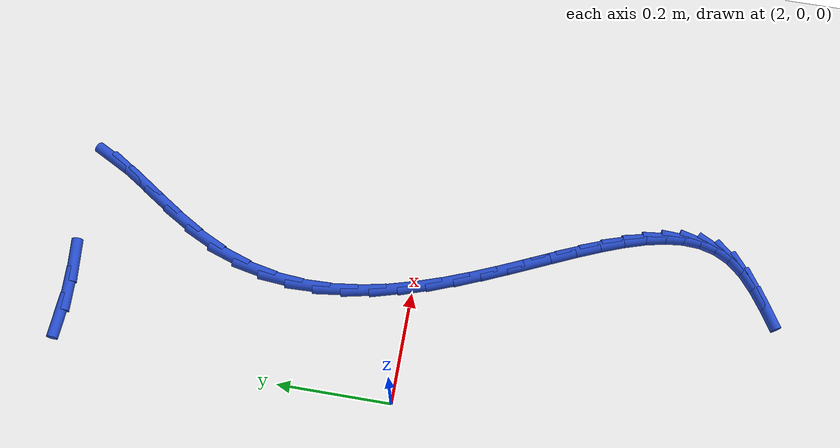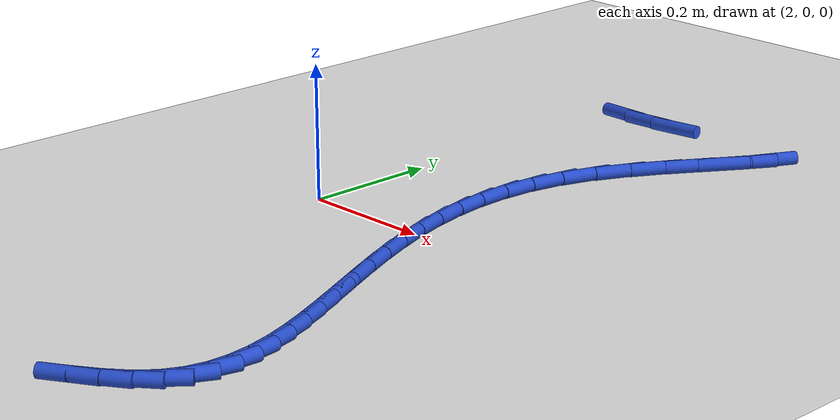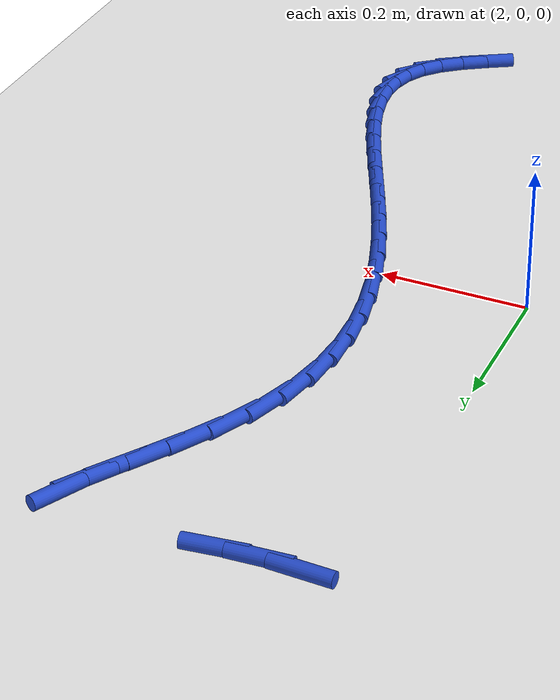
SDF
<sdf version="1.6">
 <world name="default">
  <model name="ground_plane">
   <static>1</static>
   <link name="link">
    <collision name="collision">
     <geometry><plane><normal>0 0 1</normal><size>100 100</size></plane></geometry>
     <surface><friction><ode><mu>100</mu><mu2>50</mu2></ode></friction></surface>
    </collision>
    <visual name="visual">
     <cast_shadows>0</cast_shadows>
     <geometry><plane><normal>0 0 1</normal><size>100 100</size></plane></geometry>
     <material>
      <script><uri>file://media/materials/scripts/gazebo.material</uri><name>Gazebo/WhiteGlow</name></script>
     </material>
    </visual>
   </link>
  </model>
  <model name="line">
   <link name="link_78">
    <pose>2.0508895421811517 0.5960268916804057 0.01 0 1.57 -0.026283981945086205</pose>
    <collision name="collision">
     <geometry><cylinder><radius>0.01</radius><length>0.08</length></cylinder></geometry>
    </collision>
    <visual name="visual">
     <material>
      <script><name>Gazebo/Blue</name><uri>file://media/materials/scripts/gazebo.material</uri></script>
     </material>
     <geometry><cylinder><radius>0.01</radius><length>0.08</length></cylinder></geometry>
    </visual>
   </link>
   <link name="link_79">
    <pose>2.101167924670205 0.5947050711765938 0.01 0 1.57 0.07279974871065867</pose>
    <collision name="collision">
     <geometry><cylinder><radius>0.01</radius><length>0.08</length></cylinder></geometry>
    </collision>
    <visual name="visual">
     <material>
      <script><name>Gazebo/Blue</name><uri>file://media/materials/scripts/gazebo.material</uri></script>
     </material>
     <geometry><cylinder><radius>0.01</radius><length>0.08</length></cylinder></geometry>
    </visual>
   </link>
   <link name="link_80">
    <pose>2.1535966578437957 0.5985286268624497 0.01 0 1.57 0.12800280164289157</pose>
    <collision name="collision">
     <geometry><cylinder><radius>0.01</radius><length>0.08</length></cylinder></geometry>
    </collision>
    <visual name="visual">
     <material>
      <script><name>Gazebo/Blue</name><uri>file://media/materials/scripts/gazebo.material</uri></script>
     </material>
     <geometry><cylinder><radius>0.01</radius><length>0.08</length></cylinder></geometry>
    </visual>
   </link>
   <link name="link_87">
    <pose>2.356748423538991 0.5790809859419566 0.01 0 1.57 1.0931618102962333</pose>
    <collision name="collision">
     <geometry><cylinder><radius>0.01</radius><length>0.08</length></cylinder></geometry>
    </collision>
    <visual name="visual">
     <material>
      <script><name>Gazebo/Blue</name><uri>file://media/materials/scripts/gazebo.material</uri></script>
     </material>
     <geometry><cylinder><radius>0.01</radius><length>0.08</length></cylinder></geometry>
    </visual>
   </link>
   <link name="link_88">
    <pose>2.341363884464642 0.5493586065187686 0.01 0 1.57 1.0045522965104887</pose>
    <collision name="collision">
     <geometry><cylinder><radius>0.01</radius><length>0.08</length></cylinder></geometry>
    </collision>
    <visual name="visual">
     <material>
      <script><name>Gazebo/Blue</name><uri>file://media/materials/scripts/gazebo.material</uri></script>
     </material>
     <geometry><cylinder><radius>0.01</radius><length>0.08</length></cylinder></geometry>
    </visual>
   </link>
   <link name="link_89">
    <pose>2.3184331203912123 0.5132859198176739 0.01 0 1.57 0.9819767871209888</pose>
    <collision name="collision">
     <geometry><cylinder><radius>0.01</radius><length>0.08</length></cylinder></geometry>
    </collision>
    <visual name="visual">
     <material>
      <script><name>Gazebo/Blue</name><uri>file://media/materials/scripts/gazebo.material</uri></script>
     </material>
     <geometry><cylinder><radius>0.01</radius><length>0.08</length></cylinder></geometry>
    </visual>
   </link>
   <link name="link_90">
    <pose>2.2909286613685977 0.47210216742890554 0.01 0 1.57 0.9972425596143414</pose>
    <collision name="collision">
     <geometry><cylinder><radius>0.01</radius><length>0.08</length></cylinder></geometry>
    </collision>
    <visual name="visual">
     <material>
      <script><name>Gazebo/Blue</name><uri>file://media/materials/scripts/gazebo.material</uri></script>
     </material>
     <geometry><cylinder><radius>0.01</radius><length>0.08</length></cylinder></geometry>
    </visual>
   </link>
   <link name="link_91">
    <pose>2.261823037446695 0.42704659094269576 0.01 0 1.57 1.044034522045907</pose>
    <collision name="collision">
     <geometry><cylinder><radius>0.01</radius><length>0.08</length></cylinder></geometry>
    </collision>
    <visual name="visual">
     <material>
      <script><name>Gazebo/Blue</name><uri>file://media/materials/scripts/gazebo.material</uri></script>
     </material>
     <geometry><cylinder><radius>0.01</radius><length>0.08</length></cylinder></geometry>
    </visual>
   </link>
   <link name="link_92">
    <pose>2.2340887786754022 0.3793584319492776 0.01 0 1.57 1.1260745458896164</pose>
    <collision name="collision">
     <geometry><cylinder><radius>0.01</radius><length>0.08</length></cylinder></geometry>
    </collision>
    <visual name="visual">
     <material>
      <script><name>Gazebo/Blue</name><uri>file://media/materials/scripts/gazebo.material</uri></script>
     </material>
     <geometry><cylinder><radius>0.01</radius><length>0.08</length></cylinder></geometry>
    </visual>
   </link>
   <link name="link_93">
    <pose>2.2106984151046136 0.33027693203888364 0.01 0 1.57 1.246651998501154</pose>
    <collision name="collision">
     <geometry><cylinder><radius>0.01</radius><length>0.08</length></cylinder></geometry>
    </collision>
    <visual name="visual">
     <material>
      <script><name>Gazebo/Blue</name><uri>file://media/materials/scripts/gazebo.material</uri></script>
     </material>
     <geometry><cylinder><radius>0.01</radius><length>0.08</length></cylinder></geometry>
    </visual>
   </link>
   <link name="link_94">
    <pose>2.1941019813313622 0.28088207990556296 0.01 0 1.57 1.3749946324505016</pose>
    <collision name="collision">
     <geometry><cylinder><radius>0.01</radius><length>0.08</length></cylinder></geometry>
    </collision>
    <visual name="visual">
     <material>
      <script><name>Gazebo/Blue</name><uri>file://media/materials/scripts/gazebo.material</uri></script>
     </material>
     <geometry><cylinder><radius>0.01</radius><length>0.08</length></cylinder></geometry>
    </visual>
   </link>
   <link name="link_95">
    <pose>2.184309406774296 0.23151013754771846 0.01 0 1.57 1.4959708157244989</pose>
    <collision name="collision">
     <geometry><cylinder><radius>0.01</radius><length>0.08</length></cylinder></geometry>
    </collision>
    <visual name="visual">
     <material>
      <script><name>Gazebo/Blue</name><uri>file://media/materials/scripts/gazebo.material</uri></script>
     </material>
     <geometry><cylinder><radius>0.01</radius><length>0.08</length></cylinder></geometry>
    </visual>
   </link>
   <link name="link_96">
    <pose>2.1806188788242604 0.18228043305812558 0.01 0 1.57 -1.5358975702147402</pose>
    <collision name="collision">
     <geometry><cylinder><radius>0.01</radius><length>0.08</length></cylinder></geometry>
    </collision>
    <visual name="visual">
     <material>
      <script><name>Gazebo/Blue</name><uri>file://media/materials/scripts/gazebo.material</uri></script>
     </material>
     <geometry><cylinder><radius>0.01</radius><length>0.08</length></cylinder></geometry>
    </visual>
   </link>
   <link name="link_97">
    <pose>2.182328500982474 0.13331226896059648 0.01 0 1.57 -1.4396693747408422</pose>
    <collision name="collision">
     <geometry><cylinder><radius>0.01</radius><length>0.08</length></cylinder></geometry>
    </collision>
    <visual name="visual">
     <material>
      <script><name>Gazebo/Blue</name><uri>file://media/materials/scripts/gazebo.material</uri></script>
     </material>
     <geometry><cylinder><radius>0.01</radius><length>0.08</length></cylinder></geometry>
    </visual>
   </link>
   <link name="link_98">
    <pose>2.188736376750155 0.0847249477789446 0.01 0 1.57 -1.357718800722844</pose>
    <collision name="collision">
     <geometry><cylinder><radius>0.01</radius><length>0.08</length></cylinder></geometry>
    </collision>
    <visual name="visual">
     <material>
      <script><name>Gazebo/Blue</name><uri>file://media/materials/scripts/gazebo.material</uri></script>
     </material>
     <geometry><cylinder><radius>0.01</radius><length>0.08</length></cylinder></geometry>
    </visual>
   </link>
   <link name="link_99">
    <pose>2.1991406096285218 0.03663777203698303 0.01 0 1.57 -1.28984036425386</pose>
    <collision name="collision">
     <geometry><cylinder><radius>0.01</radius><length>0.08</length></cylinder></geometry>
    </collision>
    <visual name="visual">
     <material>
      <script><name>Gazebo/Blue</name><uri>file://media/materials/scripts/gazebo.material</uri></script>
     </material>
     <geometry><cylinder><radius>0.01</radius><length>0.08</length></cylinder></geometry>
    </visual>
   </link>
   <link name="link_100">
    <pose>2.212839303118792 -0.010829955741475005 0.01 0 1.57 -1.2353399567506218</pose>
    <collision name="collision">
     <geometry><cylinder><radius>0.01</radius><length>0.08</length></cylinder></geometry>
    </collision>
    <visual name="visual">
     <material>
      <script><name>Gazebo/Blue</name><uri>file://media/materials/scripts/gazebo.material</uri></script>
     </material>
     <geometry><cylinder><radius>0.01</radius><length>0.08</length></cylinder></geometry>
    </visual>
   </link>
   <link name="link_101">
    <pose>2.229130560722183 -0.05755893303261657 0.01 0 1.57 -1.193421910153615</pose>
    <collision name="collision">
     <geometry><cylinder><radius>0.01</radius><length>0.08</length></cylinder></geometry>
    </collision>
    <visual name="visual">
     <material>
      <script><name>Gazebo/Blue</name><uri>file://media/materials/scripts/gazebo.material</uri></script>
     </material>
     <geometry><cylinder><radius>0.01</radius><length>0.08</length></cylinder></geometry>
    </visual>
   </link>
   <link name="link_102">
    <pose>2.2473124859399145 -0.10342985731262856 0.01 0 1.57 -1.1634495268033582</pose>
    <collision name="collision">
     <geometry><cylinder><radius>0.01</radius><length>0.08</length></cylinder></geometry>
    </collision>
    <visual name="visual">
     <material>
      <script><name>Gazebo/Blue</name><uri>file://media/materials/scripts/gazebo.material</uri></script>
     </material>
     <geometry><cylinder><radius>0.01</radius><length>0.08</length></cylinder></geometry>
    </visual>
   </link>
   <link name="link_103">
    <pose>2.266683182273202 -0.14832342605769783 0.01 0 1.57 -1.1451175801470286</pose>
    <collision name="collision">
     <geometry><cylinder><radius>0.01</radius><length>0.08</length></cylinder></geometry>
    </collision>
    <visual name="visual">
     <material>
      <script><name>Gazebo/Blue</name><uri>file://media/materials/scripts/gazebo.material</uri></script>
     </material>
     <geometry><cylinder><radius>0.01</radius><length>0.08</length></cylinder></geometry>
    </visual>
   </link>
   <link name="link_104">
    <pose>2.286540753223266 -0.19212033674401138 0.01 0 1.57 -1.1385859912398966</pose>
    <collision name="collision">
     <geometry><cylinder><radius>0.01</radius><length>0.08</length></cylinder></geometry>
    </collision>
    <visual name="visual">
     <material>
      <script><name>Gazebo/Blue</name><uri>file://media/materials/scripts/gazebo.material</uri></script>
     </material>
     <geometry><cylinder><radius>0.01</radius><length>0.08</length></cylinder></geometry>
    </visual>
   </link>
   <link name="link_105">
    <pose>2.3061833022913225 -0.23470128684775599 0.01 0 1.57 -1.1446191965026153</pose>
    <collision name="collision">
     <geometry><cylinder><radius>0.01</radius><length>0.08</length></cylinder></geometry>
    </collision>
    <visual name="visual">
     <material>
      <script><name>Gazebo/Blue</name><uri>file://media/materials/scripts/gazebo.material</uri></script>
     </material>
     <geometry><cylinder><radius>0.01</radius><length>0.08</length></cylinder></geometry>
    </visual>
   </link>
   <link name="link_106">
    <pose>2.3249089329785906 -0.2759469738451188 0.01 0 1.57 -1.164769670187971</pose>
    <collision name="collision">
     <geometry><cylinder><radius>0.01</radius><length>0.08</length></cylinder></geometry>
    </collision>
    <visual name="visual">
     <material>
      <script><name>Gazebo/Blue</name><uri>file://media/materials/scripts/gazebo.material</uri></script>
     </material>
     <geometry><cylinder><radius>0.01</radius><length>0.08</length></cylinder></geometry>
    </visual>
   </link>
   <link name="link_107">
    <pose>2.3420157487862885 -0.31573809521228663 0.01 0 1.57 -1.201637244671332</pose>
    <collision name="collision">
     <geometry><cylinder><radius>0.01</radius><length>0.08</length></cylinder></geometry>
    </collision>
    <visual name="visual">
     <material>
      <script><name>Gazebo/Blue</name><uri>file://media/materials/scripts/gazebo.material</uri></script>
     </material>
     <geometry><cylinder><radius>0.01</radius><length>0.08</length></cylinder></geometry>
    </visual>
   </link>
   <link name="link_108">
    <pose>2.356801853215633 -0.3539553484254463 0.01 0 1.57 -1.2592121943967765</pose>
    <collision name="collision">
     <geometry><cylinder><radius>0.01</radius><length>0.08</length></cylinder></geometry>
    </collision>
    <visual name="visual">
     <material>
      <script><name>Gazebo/Blue</name><uri>file://media/materials/scripts/gazebo.material</uri></script>
     </material>
     <geometry><cylinder><radius>0.01</radius><length>0.08</length></cylinder></geometry>
    </visual>
   </link>
   <link name="link_109">
    <pose>2.3685653497678434 -0.39047943096078486 0.01 0 1.57 -1.3432147792436566</pose>
    <collision name="collision">
     <geometry><cylinder><radius>0.01</radius><length>0.08</length></cylinder></geometry>
    </collision>
    <visual name="visual">
     <material>
      <script><name>Gazebo/Blue</name><uri>file://media/materials/scripts/gazebo.material</uri></script>
     </material>
     <geometry><cylinder><radius>0.01</radius><length>0.08</length></cylinder></geometry>
    </visual>
   </link>
   <link name="link_110">
    <pose>2.3766043419441365 -0.42519104029448906 0.01 0 1.57 -1.4610315506098177</pose>
    <collision name="collision">
     <geometry><cylinder><radius>0.01</radius><length>0.08</length></cylinder></geometry>
    </collision>
    <visual name="visual">
     <material>
      <script><name>Gazebo/Blue</name><uri>file://media/materials/scripts/gazebo.material</uri></script>
     </material>
     <geometry><cylinder><radius>0.01</radius><length>0.08</length></cylinder></geometry>
    </visual>
   </link>
   <link name="link_111">
    <pose>2.3802169332457317 -0.45797087390274616 0.01 0 1.57 1.5215109387688488</pose>
    <collision name="collision">
     <geometry><cylinder><radius>0.01</radius><length>0.08</length></cylinder></geometry>
    </collision>
    <visual name="visual">
     <material>
      <script><name>Gazebo/Blue</name><uri>file://media/materials/scripts/gazebo.material</uri></script>
     </material>
     <geometry><cylinder><radius>0.01</radius><length>0.08</length></cylinder></geometry>
    </visual>
   </link>
   <link name="link_112">
    <pose>2.3787012271738464 -0.4886996292617428 0.01 0 1.57 1.3190302265714944</pose>
    <collision name="collision">
     <geometry><cylinder><radius>0.01</radius><length>0.08</length></cylinder></geometry>
    </collision>
    <visual name="visual">
     <material>
      <script><name>Gazebo/Blue</name><uri>file://media/materials/scripts/gazebo.material</uri></script>
     </material>
     <geometry><cylinder><radius>0.01</radius><length>0.08</length></cylinder></geometry>
    </visual>
   </link>
   <link name="link_113">
    <pose>2.3713553272296983 -0.5172580038476661 0.01 0 1.57 1.0847587087342372</pose>
    <collision name="collision">
     <geometry><cylinder><radius>0.01</radius><length>0.08</length></cylinder></geometry>
    </collision>
    <visual name="visual">
     <material>
      <script><name>Gazebo/Blue</name><uri>file://media/materials/scripts/gazebo.material</uri></script>
     </material>
     <geometry><cylinder><radius>0.01</radius><length>0.08</length></cylinder></geometry>
    </visual>
   </link>
   <link name="link_114">
    <pose>2.3574773369145055 -0.5435266951367027 0.01 0 1.57 0.8490403589658323</pose>
    <collision name="collision">
     <geometry><cylinder><radius>0.01</radius><length>0.08</length></cylinder></geometry>
    </collision>
    <visual name="visual">
     <material>
      <script><name>Gazebo/Blue</name><uri>file://media/materials/scripts/gazebo.material</uri></script>
     </material>
     <geometry><cylinder><radius>0.01</radius><length>0.08</length></cylinder></geometry>
    </visual>
   </link>
   <link name="link_115">
    <pose>2.336443285600307 -0.5674241533233748 0.01 0 1.57 0.6739334376259184</pose>
    <collision name="collision">
     <geometry><cylinder><radius>0.01</radius><length>0.08</length></cylinder></geometry>
    </collision>
    <visual name="visual">
     <material>
      <script><name>Gazebo/Blue</name><uri>file://media/materials/scripts/gazebo.material</uri></script>
     </material>
     <geometry><cylinder><radius>0.01</radius><length>0.08</length></cylinder></geometry>
    </visual>
   </link>
   <link name="link_116">
    <pose>2.308851555196128 -0.5894610212918614 0.01 0 1.57 0.5759419329419844</pose>
    <collision name="collision">
     <geometry><cylinder><radius>0.01</radius><length>0.08</length></cylinder></geometry>
    </collision>
    <visual name="visual">
     <material>
      <script><name>Gazebo/Blue</name><uri>file://media/materials/scripts/gazebo.material</uri></script>
     </material>
     <geometry><cylinder><radius>0.01</radius><length>0.08</length></cylinder></geometry>
    </visual>
   </link>
   <link name="link_117">
    <pose>2.276271176751166 -0.6106181919627605 0.01 0 1.57 0.5340048891090472</pose>
    <collision name="collision">
     <geometry><cylinder><radius>0.01</radius><length>0.08</length></cylinder></geometry>
    </collision>
    <visual name="visual">
     <material>
      <script><name>Gazebo/Blue</name><uri>file://media/materials/scripts/gazebo.material</uri></script>
     </material>
     <geometry><cylinder><radius>0.01</radius><length>0.08</length></cylinder></geometry>
    </visual>
   </link>
  </model>
 </world>
</sdf>
